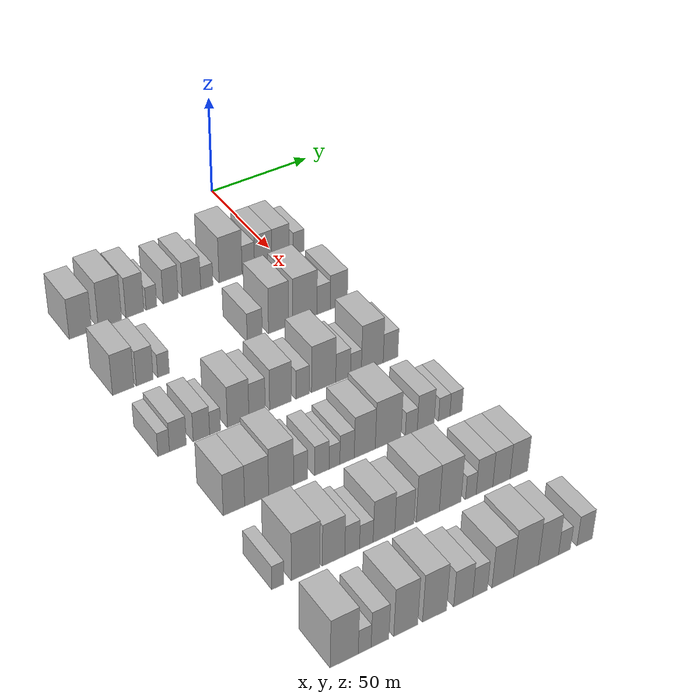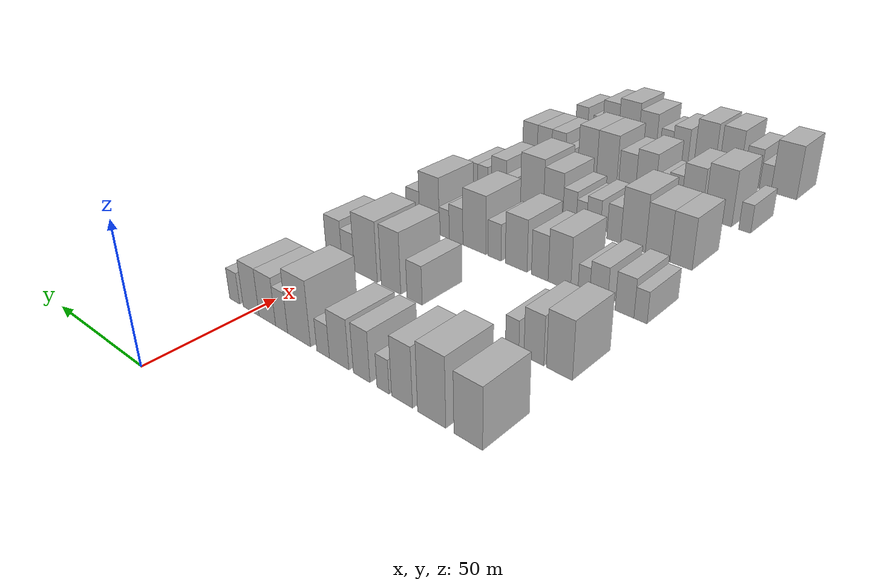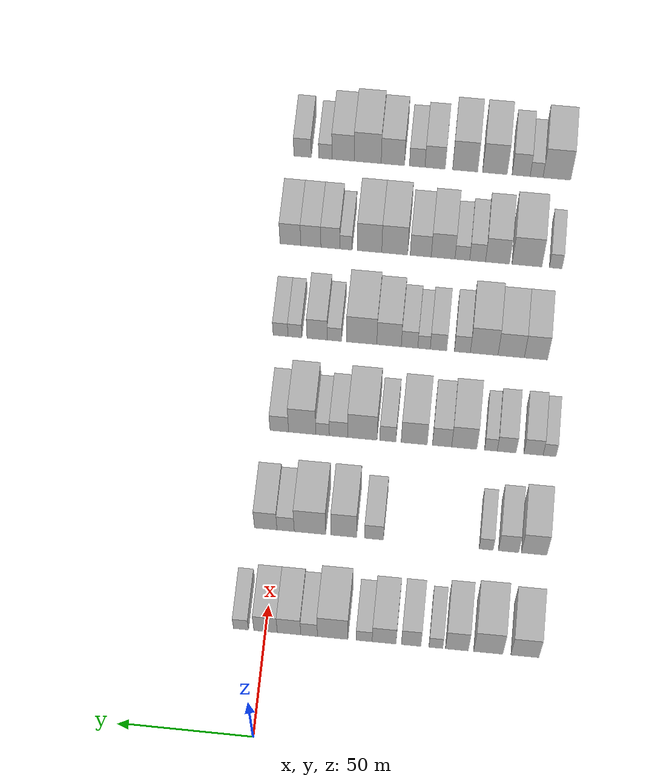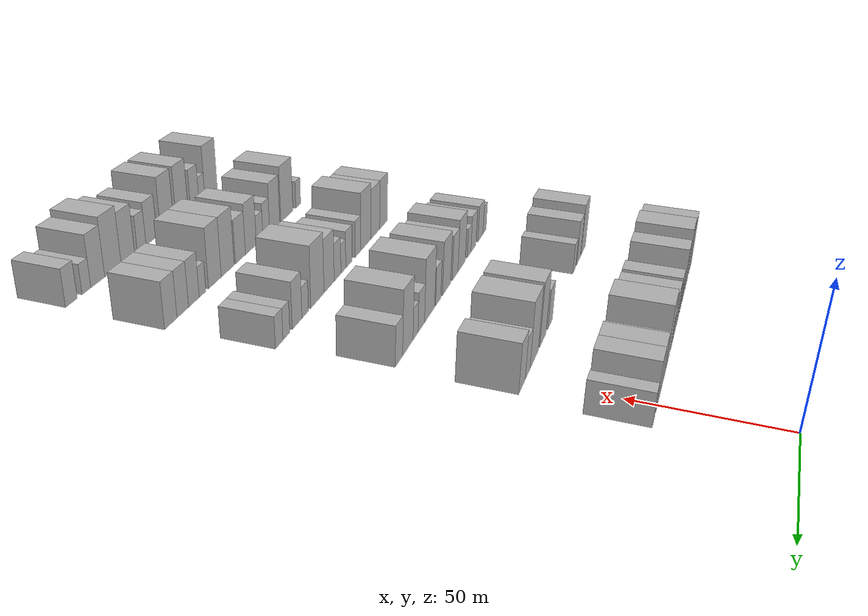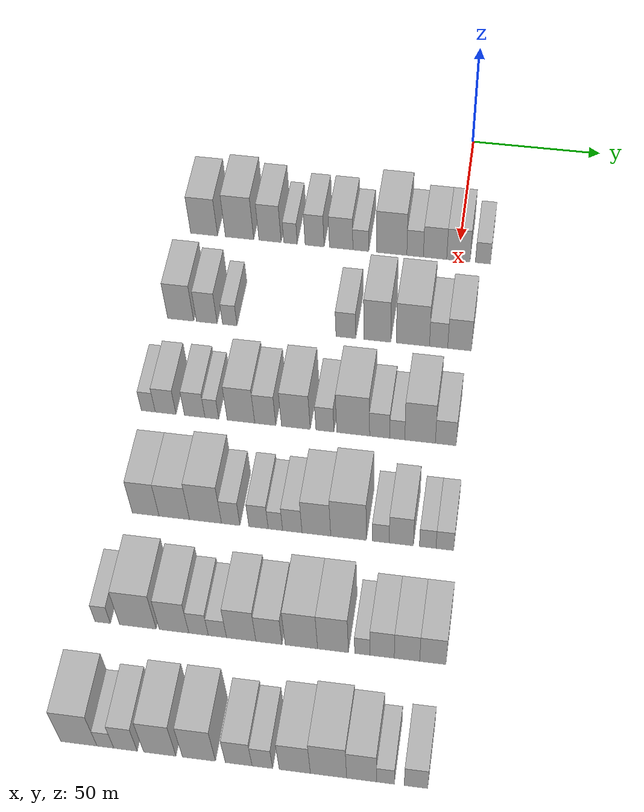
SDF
<sdf version="1.6">
 <world name="default">
  <model name="building_63">
   <static>1</static>
   <pose>50.0000 -96.2840 0 0.000000 0.000000 0.000000</pose>
   <link name="link">
    <pose>0 0 10.50 0 0 0</pose>
    <collision name="collision"><geometry><box><size>20.0000 10.3289 21.0000</size></box></geometry></collision>
    <visual name="visual">
     <cast_shadows>0</cast_shadows>
     <geometry><box><size>20.0000 10.3289 21.0000</size></box></geometry>
     <material>
      <script>
       <uri>model://HANNAS_wall/materials/scripts</uri>
       <uri>model://HANNAS_wall/materials/textures</uri>
       <name>vrc/HANNAS_wall</name>
      </script>
     </material>
    </visual>
   </link>
  </model>
  <model name="building_64">
   <static>1</static>
   <pose>50.0000 -82.7061 0 0.000000 0.000000 0.000000</pose>
   <link name="link">
    <pose>0 0 12.00 0 0 0</pose>
    <collision name="collision"><geometry><box><size>20.0000 10.8270 24.0000</size></box></geometry></collision>
    <visual name="visual">
     <cast_shadows>0</cast_shadows>
     <geometry><box><size>20.0000 10.8270 24.0000</size></box></geometry>
     <material>
      <script>
       <uri>model://HANNAS_wall/materials/scripts</uri>
       <uri>model://HANNAS_wall/materials/textures</uri>
       <name>vrc/HANNAS_wall</name>
      </script>
     </material>
    </visual>
   </link>
  </model>
  <model name="building_65">
   <static>1</static>
   <pose>50.0000 -71.0602 0 0.000000 0.000000 0.000000</pose>
   <link name="link">
    <pose>0 0 10.50 0 0 0</pose>
    <collision name="collision"><geometry><box><size>20.0000 8.4649 21.0000</size></box></geometry></collision>
    <visual name="visual">
     <cast_shadows>0</cast_shadows>
     <geometry><box><size>20.0000 8.4649 21.0000</size></box></geometry>
     <material>
      <script>
       <uri>model://HANNAS_wall/materials/scripts</uri>
       <uri>model://HANNAS_wall/materials/textures</uri>
       <name>vrc/HANNAS_wall</name>
      </script>
     </material>
    </visual>
   </link>
  </model>
  <model name="building_66">
   <static>1</static>
   <pose>50.0000 -63.2644 0 0.000000 0.000000 0.000000</pose>
   <link name="link">
    <pose>0 0 6.00 0 0 0</pose>
    <collision name="collision"><geometry><box><size>20.0000 5.1267 12.0000</size></box></geometry></collision>
    <visual name="visual">
     <cast_shadows>0</cast_shadows>
     <geometry><box><size>20.0000 5.1267 12.0000</size></box></geometry>
     <material>
      <script>
       <uri>model://HANNAS_wall/materials/scripts</uri>
       <uri>model://HANNAS_wall/materials/textures</uri>
       <name>vrc/HANNAS_wall</name>
      </script>
     </material>
    </visual>
   </link>
  </model>
  <model name="building_67">
   <static>1</static>
   <pose>50.0000 -54.0867 0 0.000000 0.000000 0.000000</pose>
   <link name="link">
    <pose>0 0 9.00 0 0 0</pose>
    <collision name="collision"><geometry><box><size>20.0000 7.2288 18.0000</size></box></geometry></collision>
    <visual name="visual">
     <cast_shadows>0</cast_shadows>
     <geometry><box><size>20.0000 7.2288 18.0000</size></box></geometry>
     <material>
      <script>
       <uri>model://HANNAS_wall/materials/scripts</uri>
       <uri>model://HANNAS_wall/materials/textures</uri>
       <name>vrc/HANNAS_wall</name>
      </script>
     </material>
    </visual>
   </link>
  </model>
  <model name="building_68">
   <static>1</static>
   <pose>50.0000 -44.0313 0 0.000000 0.000000 0.000000</pose>
   <link name="link">
    <pose>0 0 9.00 0 0 0</pose>
    <collision name="collision"><geometry><box><size>20.0000 8.8820 18.0000</size></box></geometry></collision>
    <visual name="visual">
     <cast_shadows>0</cast_shadows>
     <geometry><box><size>20.0000 8.8820 18.0000</size></box></geometry>
     <material>
      <script>
       <uri>model://HANNAS_wall/materials/scripts</uri>
       <uri>model://HANNAS_wall/materials/textures</uri>
       <name>vrc/HANNAS_wall</name>
      </script>
     </material>
    </visual>
   </link>
  </model>
  <model name="building_69">
   <static>1</static>
   <pose>50.0000 -36.5967 0 0.000000 0.000000 0.000000</pose>
   <link name="link">
    <pose>0 0 6.00 0 0 0</pose>
    <collision name="collision"><geometry><box><size>20.0000 5.9871 12.0000</size></box></geometry></collision>
    <visual name="visual">
     <cast_shadows>0</cast_shadows>
     <geometry><box><size>20.0000 5.9871 12.0000</size></box></geometry>
     <material>
      <script>
       <uri>model://HANNAS_wall/materials/scripts</uri>
       <uri>model://HANNAS_wall/materials/textures</uri>
       <name>vrc/HANNAS_wall</name>
      </script>
     </material>
    </visual>
   </link>
  </model>
  <model name="building_70">
   <static>1</static>
   <pose>50.0000 -24.9194 0 0.000000 0.000000 0.000000</pose>
   <link name="link">
    <pose>0 0 12.00 0 0 0</pose>
    <collision name="collision"><geometry><box><size>20.0000 11.3674 24.0000</size></box></geometry></collision>
    <visual name="visual">
     <cast_shadows>0</cast_shadows>
     <geometry><box><size>20.0000 11.3674 24.0000</size></box></geometry>
     <material>
      <script>
       <uri>model://HANNAS_wall/materials/scripts</uri>
       <uri>model://HANNAS_wall/materials/textures</uri>
       <name>vrc/HANNAS_wall</name>
      </script>
     </material>
    </visual>
   </link>
  </model>
  <model name="building_71">
   <static>1</static>
   <pose>50.0000 -16.1326 0 0.000000 0.000000 0.000000</pose>
   <link name="link">
    <pose>0 0 7.50 0 0 0</pose>
    <collision name="collision"><geometry><box><size>20.0000 6.2061 15.0000</size></box></geometry></collision>
    <visual name="visual">
     <cast_shadows>0</cast_shadows>
     <geometry><box><size>20.0000 6.2061 15.0000</size></box></geometry>
     <material>
      <script>
       <uri>model://HANNAS_wall/materials/scripts</uri>
       <uri>model://HANNAS_wall/materials/textures</uri>
       <name>vrc/HANNAS_wall</name>
      </script>
     </material>
    </visual>
   </link>
  </model>
  <model name="building_72">
   <static>1</static>
   <pose>50.0000 -8.6556 0 0.000000 0.000000 0.000000</pose>
   <link name="link">
    <pose>0 0 9.00 0 0 0</pose>
    <collision name="collision"><geometry><box><size>20.0000 8.7480 18.0000</size></box></geometry></collision>
    <visual name="visual">
     <cast_shadows>0</cast_shadows>
     <geometry><box><size>20.0000 8.7480 18.0000</size></box></geometry>
     <material>
      <script>
       <uri>model://HANNAS_wall/materials/scripts</uri>
       <uri>model://HANNAS_wall/materials/textures</uri>
       <name>vrc/HANNAS_wall</name>
      </script>
     </material>
    </visual>
   </link>
  </model>
  <model name="building_73">
   <static>1</static>
   <pose>50.0000 0.0947 0 0.000000 0.000000 0.000000</pose>
   <link name="link">
    <pose>0 0 9.00 0 0 0</pose>
    <collision name="collision"><geometry><box><size>20.0000 8.7524 18.0000</size></box></geometry></collision>
    <visual name="visual">
     <cast_shadows>0</cast_shadows>
     <geometry><box><size>20.0000 8.7524 18.0000</size></box></geometry>
     <material>
      <script>
       <uri>model://HANNAS_wall/materials/scripts</uri>
       <uri>model://HANNAS_wall/materials/textures</uri>
       <name>vrc/HANNAS_wall</name>
      </script>
     </material>
    </visual>
   </link>
  </model>
  <model name="building_74">
   <static>1</static>
   <pose>50.0000 9.2794 0 0.000000 0.000000 0.000000</pose>
   <link name="link">
    <pose>0 0 6.00 0 0 0</pose>
    <collision name="collision"><geometry><box><size>20.0000 5.6171 12.0000</size></box></geometry></collision>
    <visual name="visual">
     <cast_shadows>0</cast_shadows>
     <geometry><box><size>20.0000 5.6171 12.0000</size></box></geometry>
     <material>
      <script>
       <uri>model://HANNAS_wall/materials/scripts</uri>
       <uri>model://HANNAS_wall/materials/textures</uri>
       <name>vrc/HANNAS_wall</name>
      </script>
     </material>
    </visual>
   </link>
  </model>
  <model name="building_202">
   <static>1</static>
   <pose>90.0000 -97.0730 0 0.000000 0.000000 0.000000</pose>
   <link name="link">
    <pose>0 0 10.50 0 0 0</pose>
    <collision name="collision"><geometry><box><size>20.0000 9.6182 21.0000</size></box></geometry></collision>
    <visual name="visual">
     <cast_shadows>0</cast_shadows>
     <geometry><box><size>20.0000 9.6182 21.0000</size></box></geometry>
     <material>
      <script>
       <uri>model://HANNAS_wall/materials/scripts</uri>
       <uri>model://HANNAS_wall/materials/textures</uri>
       <name>vrc/HANNAS_wall</name>
      </script>
     </material>
    </visual>
   </link>
  </model>
  <model name="building_203">
   <static>1</static>
   <pose>90.0000 -87.4512 0 0.000000 0.000000 0.000000</pose>
   <link name="link">
    <pose>0 0 9.00 0 0 0</pose>
    <collision name="collision"><geometry><box><size>20.0000 7.6255 18.0000</size></box></geometry></collision>
    <visual name="visual">
     <cast_shadows>0</cast_shadows>
     <geometry><box><size>20.0000 7.6255 18.0000</size></box></geometry>
     <material>
      <script>
       <uri>model://HANNAS_wall/materials/scripts</uri>
       <uri>model://HANNAS_wall/materials/textures</uri>
       <name>vrc/HANNAS_wall</name>
      </script>
     </material>
    </visual>
   </link>
  </model>
  <model name="building_204">
   <static>1</static>
   <pose>90.0000 -78.9782 0 0.000000 0.000000 0.000000</pose>
   <link name="link">
    <pose>0 0 6.00 0 0 0</pose>
    <collision name="collision"><geometry><box><size>20.0000 5.3205 12.0000</size></box></geometry></collision>
    <visual name="visual">
     <cast_shadows>0</cast_shadows>
     <geometry><box><size>20.0000 5.3205 12.0000</size></box></geometry>
     <material>
      <script>
       <uri>model://HANNAS_wall/materials/scripts</uri>
       <uri>model://HANNAS_wall/materials/textures</uri>
       <name>vrc/HANNAS_wall</name>
      </script>
     </material>
    </visual>
   </link>
  </model>
  <model name="building_205">
   <static>1</static>
   <pose>90.0000 -36.5297 0 0.000000 0.000000 0.000000</pose>
   <link name="link">
    <pose>0 0 7.50 0 0 0</pose>
    <collision name="collision"><geometry><box><size>20.0000 7.1921 15.0000</size></box></geometry></collision>
    <visual name="visual">
     <cast_shadows>0</cast_shadows>
     <geometry><box><size>20.0000 7.1921 15.0000</size></box></geometry>
     <material>
      <script>
       <uri>model://HANNAS_wall/materials/scripts</uri>
       <uri>model://HANNAS_wall/materials/textures</uri>
       <name>vrc/HANNAS_wall</name>
      </script>
     </material>
    </visual>
   </link>
  </model>
  <model name="building_206">
   <static>1</static>
   <pose>90.0000 -25.0879 0 0.000000 0.000000 0.000000</pose>
   <link name="link">
    <pose>0 0 12.00 0 0 0</pose>
    <collision name="collision"><geometry><box><size>20.0000 9.6915 24.0000</size></box></geometry></collision>
    <visual name="visual">
     <cast_shadows>0</cast_shadows>
     <geometry><box><size>20.0000 9.6915 24.0000</size></box></geometry>
     <material>
      <script>
       <uri>model://HANNAS_wall/materials/scripts</uri>
       <uri>model://HANNAS_wall/materials/textures</uri>
       <name>vrc/HANNAS_wall</name>
      </script>
     </material>
    </visual>
   </link>
  </model>
  <model name="building_207">
   <static>1</static>
   <pose>90.0000 -12.2641 0 0.000000 0.000000 0.000000</pose>
   <link name="link">
    <pose>0 0 12.00 0 0 0</pose>
    <collision name="collision"><geometry><box><size>20.0000 11.9561 24.0000</size></box></geometry></collision>
    <visual name="visual">
     <cast_shadows>0</cast_shadows>
     <geometry><box><size>20.0000 11.9561 24.0000</size></box></geometry>
     <material>
      <script>
       <uri>model://HANNAS_wall/materials/scripts</uri>
       <uri>model://HANNAS_wall/materials/textures</uri>
       <name>vrc/HANNAS_wall</name>
      </script>
     </material>
    </visual>
   </link>
  </model>
  <model name="building_208">
   <static>1</static>
   <pose>90.0000 -3.0077 0 0.000000 0.000000 0.000000</pose>
   <link name="link">
    <pose>0 0 7.50 0 0 0</pose>
    <collision name="collision"><geometry><box><size>20.0000 6.5567 15.0000</size></box></geometry></collision>
    <visual name="visual">
     <cast_shadows>0</cast_shadows>
     <geometry><box><size>20.0000 6.5567 15.0000</size></box></geometry>
     <material>
      <script>
       <uri>model://HANNAS_wall/materials/scripts</uri>
       <uri>model://HANNAS_wall/materials/textures</uri>
       <name>vrc/HANNAS_wall</name>
      </script>
     </material>
    </visual>
   </link>
  </model>
  <model name="building_209">
   <static>1</static>
   <pose>90.0000 4.5453 0 0.000000 0.000000 0.000000</pose>
   <link name="link">
    <pose>0 0 9.00 0 0 0</pose>
    <collision name="collision"><geometry><box><size>20.0000 8.5493 18.0000</size></box></geometry></collision>
    <visual name="visual">
     <cast_shadows>0</cast_shadows>
     <geometry><box><size>20.0000 8.5493 18.0000</size></box></geometry>
     <material>
      <script>
       <uri>model://HANNAS_wall/materials/scripts</uri>
       <uri>model://HANNAS_wall/materials/textures</uri>
       <name>vrc/HANNAS_wall</name>
      </script>
     </material>
    </visual>
   </link>
  </model>
  <model name="building_337">
   <static>1</static>
   <pose>130.0000 -100.3809 0 0.000000 0.000000 0.000000</pose>
   <link name="link">
    <pose>0 0 6.00 0 0 0</pose>
    <collision name="collision"><geometry><box><size>20.0000 4.9780 12.0000</size></box></geometry></collision>
    <visual name="visual">
     <cast_shadows>0</cast_shadows>
     <geometry><box><size>20.0000 4.9780 12.0000</size></box></geometry>
     <material>
      <script>
       <uri>model://HANNAS_wall/materials/scripts</uri>
       <uri>model://HANNAS_wall/materials/textures</uri>
       <name>vrc/HANNAS_wall</name>
      </script>
     </material>
    </visual>
   </link>
  </model>
  <model name="building_338">
   <static>1</static>
   <pose>130.0000 -94.2089 0 0.000000 0.000000 0.000000</pose>
   <link name="link">
    <pose>0 0 7.50 0 0 0</pose>
    <collision name="collision"><geometry><box><size>20.0000 7.3661 15.0000</size></box></geometry></collision>
    <visual name="visual">
     <cast_shadows>0</cast_shadows>
     <geometry><box><size>20.0000 7.3661 15.0000</size></box></geometry>
     <material>
      <script>
       <uri>model://HANNAS_wall/materials/scripts</uri>
       <uri>model://HANNAS_wall/materials/textures</uri>
       <name>vrc/HANNAS_wall</name>
      </script>
     </material>
    </visual>
   </link>
  </model>
  <model name="building_339">
   <static>1</static>
   <pose>130.0000 -83.9035 0 0.000000 0.000000 0.000000</pose>
   <link name="link">
    <pose>0 0 7.50 0 0 0</pose>
    <collision name="collision"><geometry><box><size>20.0000 7.2446 15.0000</size></box></geometry></collision>
    <visual name="visual">
     <cast_shadows>0</cast_shadows>
     <geometry><box><size>20.0000 7.2446 15.0000</size></box></geometry>
     <material>
      <script>
       <uri>model://HANNAS_wall/materials/scripts</uri>
       <uri>model://HANNAS_wall/materials/textures</uri>
       <name>vrc/HANNAS_wall</name>
      </script>
     </material>
    </visual>
   </link>
  </model>
  <model name="building_340">
   <static>1</static>
   <pose>130.0000 -77.8463 0 0.000000 0.000000 0.000000</pose>
   <link name="link">
    <pose>0 0 6.00 0 0 0</pose>
    <collision name="collision"><geometry><box><size>20.0000 4.8697 12.0000</size></box></geometry></collision>
    <visual name="visual">
     <cast_shadows>0</cast_shadows>
     <geometry><box><size>20.0000 4.8697 12.0000</size></box></geometry>
     <material>
      <script>
       <uri>model://HANNAS_wall/materials/scripts</uri>
       <uri>model://HANNAS_wall/materials/textures</uri>
       <name>vrc/HANNAS_wall</name>
      </script>
     </material>
    </visual>
   </link>
  </model>
  <model name="building_341">
   <static>1</static>
   <pose>130.0000 -67.5701 0 0.000000 0.000000 0.000000</pose>
   <link name="link">
    <pose>0 0 10.50 0 0 0</pose>
    <collision name="collision"><geometry><box><size>20.0000 9.6828 21.0000</size></box></geometry></collision>
    <visual name="visual">
     <cast_shadows>0</cast_shadows>
     <geometry><box><size>20.0000 9.6828 21.0000</size></box></geometry>
     <material>
      <script>
       <uri>model://HANNAS_wall/materials/scripts</uri>
       <uri>model://HANNAS_wall/materials/textures</uri>
       <name>vrc/HANNAS_wall</name>
      </script>
     </material>
    </visual>
   </link>
  </model>
  <model name="building_342">
   <static>1</static>
   <pose>130.0000 -59.0303 0 0.000000 0.000000 0.000000</pose>
   <link name="link">
    <pose>0 0 9.00 0 0 0</pose>
    <collision name="collision"><geometry><box><size>20.0000 7.3967 18.0000</size></box></geometry></collision>
    <visual name="visual">
     <cast_shadows>0</cast_shadows>
     <geometry><box><size>20.0000 7.3967 18.0000</size></box></geometry>
     <material>
      <script>
       <uri>model://HANNAS_wall/materials/scripts</uri>
       <uri>model://HANNAS_wall/materials/textures</uri>
       <name>vrc/HANNAS_wall</name>
      </script>
     </material>
    </visual>
   </link>
  </model>
  <model name="building_343">
   <static>1</static>
   <pose>130.0000 -48.3020 0 0.000000 0.000000 0.000000</pose>
   <link name="link">
    <pose>0 0 10.50 0 0 0</pose>
    <collision name="collision"><geometry><box><size>20.0000 10.0600 21.0000</size></box></geometry></collision>
    <visual name="visual">
     <cast_shadows>0</cast_shadows>
     <geometry><box><size>20.0000 10.0600 21.0000</size></box></geometry>
     <material>
      <script>
       <uri>model://HANNAS_wall/materials/scripts</uri>
       <uri>model://HANNAS_wall/materials/textures</uri>
       <name>vrc/HANNAS_wall</name>
      </script>
     </material>
    </visual>
   </link>
  </model>
  <model name="building_344">
   <static>1</static>
   <pose>130.0000 -38.1283 0 0.000000 0.000000 0.000000</pose>
   <link name="link">
    <pose>0 0 7.50 0 0 0</pose>
    <collision name="collision"><geometry><box><size>20.0000 6.2874 15.0000</size></box></geometry></collision>
    <visual name="visual">
     <cast_shadows>0</cast_shadows>
     <geometry><box><size>20.0000 6.2874 15.0000</size></box></geometry>
     <material>
      <script>
       <uri>model://HANNAS_wall/materials/scripts</uri>
       <uri>model://HANNAS_wall/materials/textures</uri>
       <name>vrc/HANNAS_wall</name>
      </script>
     </material>
    </visual>
   </link>
  </model>
  <model name="building_345">
   <static>1</static>
   <pose>130.0000 -28.2711 0 0.000000 0.000000 0.000000</pose>
   <link name="link">
    <pose>0 0 12.00 0 0 0</pose>
    <collision name="collision"><geometry><box><size>20.0000 11.4269 24.0000</size></box></geometry></collision>
    <visual name="visual">
     <cast_shadows>0</cast_shadows>
     <geometry><box><size>20.0000 11.4269 24.0000</size></box></geometry>
     <material>
      <script>
       <uri>model://HANNAS_wall/materials/scripts</uri>
       <uri>model://HANNAS_wall/materials/textures</uri>
       <name>vrc/HANNAS_wall</name>
      </script>
     </material>
    </visual>
   </link>
  </model>
  <model name="building_346">
   <static>1</static>
   <pose>130.0000 -19.0503 0 0.000000 0.000000 0.000000</pose>
   <link name="link">
    <pose>0 0 7.50 0 0 0</pose>
    <collision name="collision"><geometry><box><size>20.0000 7.0149 15.0000</size></box></geometry></collision>
    <visual name="visual">
     <cast_shadows>0</cast_shadows>
     <geometry><box><size>20.0000 7.0149 15.0000</size></box></geometry>
     <material>
      <script>
       <uri>model://HANNAS_wall/materials/scripts</uri>
       <uri>model://HANNAS_wall/materials/textures</uri>
       <name>vrc/HANNAS_wall</name>
      </script>
     </material>
    </visual>
   </link>
  </model>
  <model name="building_347">
   <static>1</static>
   <pose>130.0000 -12.9482 0 0.000000 0.000000 0.000000</pose>
   <link name="link">
    <pose>0 0 6.00 0 0 0</pose>
    <collision name="collision"><geometry><box><size>20.0000 5.1892 12.0000</size></box></geometry></collision>
    <visual name="visual">
     <cast_shadows>0</cast_shadows>
     <geometry><box><size>20.0000 5.1892 12.0000</size></box></geometry>
     <material>
      <script>
       <uri>model://HANNAS_wall/materials/scripts</uri>
       <uri>model://HANNAS_wall/materials/textures</uri>
       <name>vrc/HANNAS_wall</name>
      </script>
     </material>
    </visual>
   </link>
  </model>
  <model name="building_348">
   <static>1</static>
   <pose>130.0000 -5.0774 0 0.000000 0.000000 0.000000</pose>
   <link name="link">
    <pose>0 0 12.00 0 0 0</pose>
    <collision name="collision"><geometry><box><size>20.0000 10.5525 24.0000</size></box></geometry></collision>
    <visual name="visual">
     <cast_shadows>0</cast_shadows>
     <geometry><box><size>20.0000 10.5525 24.0000</size></box></geometry>
     <material>
      <script>
       <uri>model://HANNAS_wall/materials/scripts</uri>
       <uri>model://HANNAS_wall/materials/textures</uri>
       <name>vrc/HANNAS_wall</name>
      </script>
     </material>
    </visual>
   </link>
  </model>
  <model name="building_349">
   <static>1</static>
   <pose>130.0000 3.7948 0 0.000000 0.000000 0.000000</pose>
   <link name="link">
    <pose>0 0 7.50 0 0 0</pose>
    <collision name="collision"><geometry><box><size>20.0000 7.1919 15.0000</size></box></geometry></collision>
    <visual name="visual">
     <cast_shadows>0</cast_shadows>
     <geometry><box><size>20.0000 7.1919 15.0000</size></box></geometry>
     <material>
      <script>
       <uri>model://HANNAS_wall/materials/scripts</uri>
       <uri>model://HANNAS_wall/materials/textures</uri>
       <name>vrc/HANNAS_wall</name>
      </script>
     </material>
    </visual>
   </link>
  </model>
  <model name="building_477">
   <static>1</static>
   <pose>170.0000 -92.5436 0 0.000000 0.000000 0.000000</pose>
   <link name="link">
    <pose>0 0 10.50 0 0 0</pose>
    <collision name="collision"><geometry><box><size>20.0000 9.0867 21.0000</size></box></geometry></collision>
    <visual name="visual">
     <cast_shadows>0</cast_shadows>
     <geometry><box><size>20.0000 9.0867 21.0000</size></box></geometry>
     <material>
      <script>
       <uri>model://HANNAS_wall/materials/scripts</uri>
       <uri>model://HANNAS_wall/materials/textures</uri>
       <name>vrc/HANNAS_wall</name>
      </script>
     </material>
    </visual>
   </link>
  </model>
  <model name="building_478">
   <static>1</static>
   <pose>170.0000 -82.8429 0 0.000000 0.000000 0.000000</pose>
   <link name="link">
    <pose>0 0 10.50 0 0 0</pose>
    <collision name="collision"><geometry><box><size>20.0000 10.3147 21.0000</size></box></geometry></collision>
    <visual name="visual">
     <cast_shadows>0</cast_shadows>
     <geometry><box><size>20.0000 10.3147 21.0000</size></box></geometry>
     <material>
      <script>
       <uri>model://HANNAS_wall/materials/scripts</uri>
       <uri>model://HANNAS_wall/materials/textures</uri>
       <name>vrc/HANNAS_wall</name>
      </script>
     </material>
    </visual>
   </link>
  </model>
  <model name="building_479">
   <static>1</static>
   <pose>170.0000 -72.2664 0 0.000000 0.000000 0.000000</pose>
   <link name="link">
    <pose>0 0 12.00 0 0 0</pose>
    <collision name="collision"><geometry><box><size>20.0000 10.8383 24.0000</size></box></geometry></collision>
    <visual name="visual">
     <cast_shadows>0</cast_shadows>
     <geometry><box><size>20.0000 10.8383 24.0000</size></box></geometry>
     <material>
      <script>
       <uri>model://HANNAS_wall/materials/scripts</uri>
       <uri>model://HANNAS_wall/materials/textures</uri>
       <name>vrc/HANNAS_wall</name>
      </script>
     </material>
    </visual>
   </link>
  </model>
  <model name="building_480">
   <static>1</static>
   <pose>170.0000 -63.7287 0 0.000000 0.000000 0.000000</pose>
   <link name="link">
    <pose>0 0 7.50 0 0 0</pose>
    <collision name="collision"><geometry><box><size>20.0000 6.2371 15.0000</size></box></geometry></collision>
    <visual name="visual">
     <cast_shadows>0</cast_shadows>
     <geometry><box><size>20.0000 6.2371 15.0000</size></box></geometry>
     <material>
      <script>
       <uri>model://HANNAS_wall/materials/scripts</uri>
       <uri>model://HANNAS_wall/materials/textures</uri>
       <name>vrc/HANNAS_wall</name>
      </script>
     </material>
    </visual>
   </link>
  </model>
  <model name="building_481">
   <static>1</static>
   <pose>170.0000 -54.3670 0 0.000000 0.000000 0.000000</pose>
   <link name="link">
    <pose>0 0 7.50 0 0 0</pose>
    <collision name="collision"><geometry><box><size>20.0000 6.4861 15.0000</size></box></geometry></collision>
    <visual name="visual">
     <cast_shadows>0</cast_shadows>
     <geometry><box><size>20.0000 6.4861 15.0000</size></box></geometry>
     <material>
      <script>
       <uri>model://HANNAS_wall/materials/scripts</uri>
       <uri>model://HANNAS_wall/materials/textures</uri>
       <name>vrc/HANNAS_wall</name>
      </script>
     </material>
    </visual>
   </link>
  </model>
  <model name="building_482">
   <static>1</static>
   <pose>170.0000 -48.6976 0 0.000000 0.000000 0.000000</pose>
   <link name="link">
    <pose>0 0 6.00 0 0 0</pose>
    <collision name="collision"><geometry><box><size>20.0000 4.8527 12.0000</size></box></geometry></collision>
    <visual name="visual">
     <cast_shadows>0</cast_shadows>
     <geometry><box><size>20.0000 4.8527 12.0000</size></box></geometry>
     <material>
      <script>
       <uri>model://HANNAS_wall/materials/scripts</uri>
       <uri>model://HANNAS_wall/materials/textures</uri>
       <name>vrc/HANNAS_wall</name>
      </script>
     </material>
    </visual>
   </link>
  </model>
  <model name="building_483">
   <static>1</static>
   <pose>170.0000 -43.0242 0 0.000000 0.000000 0.000000</pose>
   <link name="link">
    <pose>0 0 7.50 0 0 0</pose>
    <collision name="collision"><geometry><box><size>20.0000 6.4941 15.0000</size></box></geometry></collision>
    <visual name="visual">
     <cast_shadows>0</cast_shadows>
     <geometry><box><size>20.0000 6.4941 15.0000</size></box></geometry>
     <material>
      <script>
       <uri>model://HANNAS_wall/materials/scripts</uri>
       <uri>model://HANNAS_wall/materials/textures</uri>
       <name>vrc/HANNAS_wall</name>
      </script>
     </material>
    </visual>
   </link>
  </model>
  <model name="building_484">
   <static>1</static>
   <pose>170.0000 -34.9774 0 0.000000 0.000000 0.000000</pose>
   <link name="link">
    <pose>0 0 10.50 0 0 0</pose>
    <collision name="collision"><geometry><box><size>20.0000 9.5996 21.0000</size></box></geometry></collision>
    <visual name="visual">
     <cast_shadows>0</cast_shadows>
     <geometry><box><size>20.0000 9.5996 21.0000</size></box></geometry>
     <material>
      <script>
       <uri>model://HANNAS_wall/materials/scripts</uri>
       <uri>model://HANNAS_wall/materials/textures</uri>
       <name>vrc/HANNAS_wall</name>
      </script>
     </material>
    </visual>
   </link>
  </model>
  <model name="building_485">
   <static>1</static>
   <pose>170.0000 -24.2244 0 0.000000 0.000000 0.000000</pose>
   <link name="link">
    <pose>0 0 12.00 0 0 0</pose>
    <collision name="collision"><geometry><box><size>20.0000 11.9065 24.0000</size></box></geometry></collision>
    <visual name="visual">
     <cast_shadows>0</cast_shadows>
     <geometry><box><size>20.0000 11.9065 24.0000</size></box></geometry>
     <material>
      <script>
       <uri>model://HANNAS_wall/materials/scripts</uri>
       <uri>model://HANNAS_wall/materials/textures</uri>
       <name>vrc/HANNAS_wall</name>
      </script>
     </material>
    </visual>
   </link>
  </model>
  <model name="building_486">
   <static>1</static>
   <pose>170.0000 -13.4729 0 0.000000 0.000000 0.000000</pose>
   <link name="link">
    <pose>0 0 6.00 0 0 0</pose>
    <collision name="collision"><geometry><box><size>20.0000 5.5965 12.0000</size></box></geometry></collision>
    <visual name="visual">
     <cast_shadows>0</cast_shadows>
     <geometry><box><size>20.0000 5.5965 12.0000</size></box></geometry>
     <material>
      <script>
       <uri>model://HANNAS_wall/materials/scripts</uri>
       <uri>model://HANNAS_wall/materials/textures</uri>
       <name>vrc/HANNAS_wall</name>
      </script>
     </material>
    </visual>
   </link>
  </model>
  <model name="building_487">
   <static>1</static>
   <pose>170.0000 -6.6761 0 0.000000 0.000000 0.000000</pose>
   <link name="link">
    <pose>0 0 9.00 0 0 0</pose>
    <collision name="collision"><geometry><box><size>20.0000 7.9970 18.0000</size></box></geometry></collision>
    <visual name="visual">
     <cast_shadows>0</cast_shadows>
     <geometry><box><size>20.0000 7.9970 18.0000</size></box></geometry>
     <material>
      <script>
       <uri>model://HANNAS_wall/materials/scripts</uri>
       <uri>model://HANNAS_wall/materials/textures</uri>
       <name>vrc/HANNAS_wall</name>
      </script>
     </material>
    </visual>
   </link>
  </model>
  <model name="building_488">
   <static>1</static>
   <pose>170.0000 2.0554 0 0.000000 0.000000 0.000000</pose>
   <link name="link">
    <pose>0 0 6.00 0 0 0</pose>
    <collision name="collision"><geometry><box><size>20.0000 5.4661 12.0000</size></box></geometry></collision>
    <visual name="visual">
     <cast_shadows>0</cast_shadows>
     <geometry><box><size>20.0000 5.4661 12.0000</size></box></geometry>
     <material>
      <script>
       <uri>model://HANNAS_wall/materials/scripts</uri>
       <uri>model://HANNAS_wall/materials/textures</uri>
       <name>vrc/HANNAS_wall</name>
      </script>
     </material>
    </visual>
   </link>
  </model>
  <model name="building_489">
   <static>1</static>
   <pose>170.0000 7.7135 0 0.000000 0.000000 0.000000</pose>
   <link name="link">
    <pose>0 0 6.00 0 0 0</pose>
    <collision name="collision"><geometry><box><size>20.0000 5.8501 12.0000</size></box></geometry></collision>
    <visual name="visual">
     <cast_shadows>0</cast_shadows>
     <geometry><box><size>20.0000 5.8501 12.0000</size></box></geometry>
     <material>
      <script>
       <uri>model://HANNAS_wall/materials/scripts</uri>
       <uri>model://HANNAS_wall/materials/textures</uri>
       <name>vrc/HANNAS_wall</name>
      </script>
     </material>
    </visual>
   </link>
  </model>
  <model name="building_622">
   <static>1</static>
   <pose>210.0000 -97.7946 0 0.000000 0.000000 0.000000</pose>
   <link name="link">
    <pose>0 0 6.00 0 0 0</pose>
    <collision name="collision"><geometry><box><size>20.0000 5.0116 12.0000</size></box></geometry></collision>
    <visual name="visual">
     <cast_shadows>0</cast_shadows>
     <geometry><box><size>20.0000 5.0116 12.0000</size></box></geometry>
     <material>
      <script>
       <uri>model://HANNAS_wall/materials/scripts</uri>
       <uri>model://HANNAS_wall/materials/textures</uri>
       <name>vrc/HANNAS_wall</name>
      </script>
     </material>
    </visual>
   </link>
  </model>
  <model name="building_623">
   <static>1</static>
   <pose>210.0000 -86.3336 0 0.000000 0.000000 0.000000</pose>
   <link name="link">
    <pose>0 0 12.00 0 0 0</pose>
    <collision name="collision"><geometry><box><size>20.0000 11.9104 24.0000</size></box></geometry></collision>
    <visual name="visual">
     <cast_shadows>0</cast_shadows>
     <geometry><box><size>20.0000 11.9104 24.0000</size></box></geometry>
     <material>
      <script>
       <uri>model://HANNAS_wall/materials/scripts</uri>
       <uri>model://HANNAS_wall/materials/textures</uri>
       <name>vrc/HANNAS_wall</name>
      </script>
     </material>
    </visual>
   </link>
  </model>
  <model name="building_624">
   <static>1</static>
   <pose>210.0000 -74.5983 0 0.000000 0.000000 0.000000</pose>
   <link name="link">
    <pose>0 0 10.50 0 0 0</pose>
    <collision name="collision"><geometry><box><size>20.0000 9.5602 21.0000</size></box></geometry></collision>
    <visual name="visual">
     <cast_shadows>0</cast_shadows>
     <geometry><box><size>20.0000 9.5602 21.0000</size></box></geometry>
     <material>
      <script>
       <uri>model://HANNAS_wall/materials/scripts</uri>
       <uri>model://HANNAS_wall/materials/textures</uri>
       <name>vrc/HANNAS_wall</name>
      </script>
     </material>
    </visual>
   </link>
  </model>
  <model name="building_625">
   <static>1</static>
   <pose>210.0000 -66.6676 0 0.000000 0.000000 0.000000</pose>
   <link name="link">
    <pose>0 0 7.50 0 0 0</pose>
    <collision name="collision"><geometry><box><size>20.0000 6.3012 15.0000</size></box></geometry></collision>
    <visual name="visual">
     <cast_shadows>0</cast_shadows>
     <geometry><box><size>20.0000 6.3012 15.0000</size></box></geometry>
     <material>
      <script>
       <uri>model://HANNAS_wall/materials/scripts</uri>
       <uri>model://HANNAS_wall/materials/textures</uri>
       <name>vrc/HANNAS_wall</name>
      </script>
     </material>
    </visual>
   </link>
  </model>
  <model name="building_626">
   <static>1</static>
   <pose>210.0000 -60.5862 0 0.000000 0.000000 0.000000</pose>
   <link name="link">
    <pose>0 0 6.00 0 0 0</pose>
    <collision name="collision"><geometry><box><size>20.0000 5.8616 12.0000</size></box></geometry></collision>
    <visual name="visual">
     <cast_shadows>0</cast_shadows>
     <geometry><box><size>20.0000 5.8616 12.0000</size></box></geometry>
     <material>
      <script>
       <uri>model://HANNAS_wall/materials/scripts</uri>
       <uri>model://HANNAS_wall/materials/textures</uri>
       <name>vrc/HANNAS_wall</name>
      </script>
     </material>
    </visual>
   </link>
  </model>
  <model name="building_627">
   <static>1</static>
   <pose>210.0000 -52.9222 0 0.000000 0.000000 0.000000</pose>
   <link name="link">
    <pose>0 0 10.50 0 0 0</pose>
    <collision name="collision"><geometry><box><size>20.0000 9.4664 21.0000</size></box></geometry></collision>
    <visual name="visual">
     <cast_shadows>0</cast_shadows>
     <geometry><box><size>20.0000 9.4664 21.0000</size></box></geometry>
     <material>
      <script>
       <uri>model://HANNAS_wall/materials/scripts</uri>
       <uri>model://HANNAS_wall/materials/textures</uri>
       <name>vrc/HANNAS_wall</name>
      </script>
     </material>
    </visual>
   </link>
  </model>
  <model name="building_628">
   <static>1</static>
   <pose>210.0000 -43.9848 0 0.000000 0.000000 0.000000</pose>
   <link name="link">
    <pose>0 0 9.00 0 0 0</pose>
    <collision name="collision"><geometry><box><size>20.0000 8.4084 18.0000</size></box></geometry></collision>
    <visual name="visual">
     <cast_shadows>0</cast_shadows>
     <geometry><box><size>20.0000 8.4084 18.0000</size></box></geometry>
     <material>
      <script>
       <uri>model://HANNAS_wall/materials/scripts</uri>
       <uri>model://HANNAS_wall/materials/textures</uri>
       <name>vrc/HANNAS_wall</name>
      </script>
     </material>
    </visual>
   </link>
  </model>
  <model name="building_629">
   <static>1</static>
   <pose>210.0000 -33.6000 0 0.000000 0.000000 0.000000</pose>
   <link name="link">
    <pose>0 0 12.00 0 0 0</pose>
    <collision name="collision"><geometry><box><size>20.0000 10.3612 24.0000</size></box></geometry></collision>
    <visual name="visual">
     <cast_shadows>0</cast_shadows>
     <geometry><box><size>20.0000 10.3612 24.0000</size></box></geometry>
     <material>
      <script>
       <uri>model://HANNAS_wall/materials/scripts</uri>
       <uri>model://HANNAS_wall/materials/textures</uri>
       <name>vrc/HANNAS_wall</name>
      </script>
     </material>
    </visual>
   </link>
  </model>
  <model name="building_630">
   <static>1</static>
   <pose>210.0000 -23.5041 0 0.000000 0.000000 0.000000</pose>
   <link name="link">
    <pose>0 0 12.00 0 0 0</pose>
    <collision name="collision"><geometry><box><size>20.0000 9.8306 24.0000</size></box></geometry></collision>
    <visual name="visual">
     <cast_shadows>0</cast_shadows>
     <geometry><box><size>20.0000 9.8306 24.0000</size></box></geometry>
     <material>
      <script>
       <uri>model://HANNAS_wall/materials/scripts</uri>
       <uri>model://HANNAS_wall/materials/textures</uri>
       <name>vrc/HANNAS_wall</name>
      </script>
     </material>
    </visual>
   </link>
  </model>
  <model name="building_631">
   <static>1</static>
   <pose>210.0000 -14.1484 0 0.000000 0.000000 0.000000</pose>
   <link name="link">
    <pose>0 0 6.00 0 0 0</pose>
    <collision name="collision"><geometry><box><size>20.0000 4.8808 12.0000</size></box></geometry></collision>
    <visual name="visual">
     <cast_shadows>0</cast_shadows>
     <geometry><box><size>20.0000 4.8808 12.0000</size></box></geometry>
     <material>
      <script>
       <uri>model://HANNAS_wall/materials/scripts</uri>
       <uri>model://HANNAS_wall/materials/textures</uri>
       <name>vrc/HANNAS_wall</name>
      </script>
     </material>
    </visual>
   </link>
  </model>
  <model name="building_632">
   <static>1</static>
   <pose>210.0000 -7.8735 0 0.000000 0.000000 0.000000</pose>
   <link name="link">
    <pose>0 0 9.00 0 0 0</pose>
    <collision name="collision"><geometry><box><size>20.0000 7.6689 18.0000</size></box></geometry></collision>
    <visual name="visual">
     <cast_shadows>0</cast_shadows>
     <geometry><box><size>20.0000 7.6689 18.0000</size></box></geometry>
     <material>
      <script>
       <uri>model://HANNAS_wall/materials/scripts</uri>
       <uri>model://HANNAS_wall/materials/textures</uri>
       <name>vrc/HANNAS_wall</name>
      </script>
     </material>
    </visual>
   </link>
  </model>
  <model name="building_633">
   <static>1</static>
   <pose>210.0000 -0.0198 0 0.000000 0.000000 0.000000</pose>
   <link name="link">
    <pose>0 0 9.00 0 0 0</pose>
    <collision name="collision"><geometry><box><size>20.0000 8.0384 18.0000</size></box></geometry></collision>
    <visual name="visual">
     <cast_shadows>0</cast_shadows>
     <geometry><box><size>20.0000 8.0384 18.0000</size></box></geometry>
     <material>
      <script>
       <uri>model://HANNAS_wall/materials/scripts</uri>
       <uri>model://HANNAS_wall/materials/textures</uri>
       <name>vrc/HANNAS_wall</name>
      </script>
     </material>
    </visual>
   </link>
  </model>
  <model name="building_634">
   <static>1</static>
   <pose>210.0000 8.1590 0 0.000000 0.000000 0.000000</pose>
   <link name="link">
    <pose>0 0 9.00 0 0 0</pose>
    <collision name="collision"><geometry><box><size>20.0000 8.3193 18.0000</size></box></geometry></collision>
    <visual name="visual">
     <cast_shadows>0</cast_shadows>
     <geometry><box><size>20.0000 8.3193 18.0000</size></box></geometry>
     <material>
      <script>
       <uri>model://HANNAS_wall/materials/scripts</uri>
       <uri>model://HANNAS_wall/materials/textures</uri>
       <name>vrc/HANNAS_wall</name>
      </script>
     </material>
    </visual>
   </link>
  </model>
  <model name="building_764">
   <static>1</static>
   <pose>250.0000 -95.7969 0 0.000000 0.000000 0.000000</pose>
   <link name="link">
    <pose>0 0 12.00 0 0 0</pose>
    <collision name="collision"><geometry><box><size>20.0000 11.2571 24.0000</size></box></geometry></collision>
    <visual name="visual">
     <cast_shadows>0</cast_shadows>
     <geometry><box><size>20.0000 11.2571 24.0000</size></box></geometry>
     <material>
      <script>
       <uri>model://HANNAS_wall/materials/scripts</uri>
       <uri>model://HANNAS_wall/materials/textures</uri>
       <name>vrc/HANNAS_wall</name>
      </script>
     </material>
    </visual>
   </link>
  </model>
  <model name="building_765">
   <static>1</static>
   <pose>250.0000 -87.5582 0 0.000000 0.000000 0.000000</pose>
   <link name="link">
    <pose>0 0 6.00 0 0 0</pose>
    <collision name="collision"><geometry><box><size>20.0000 5.2202 12.0000</size></box></geometry></collision>
    <visual name="visual">
     <cast_shadows>0</cast_shadows>
     <geometry><box><size>20.0000 5.2202 12.0000</size></box></geometry>
     <material>
      <script>
       <uri>model://HANNAS_wall/materials/scripts</uri>
       <uri>model://HANNAS_wall/materials/textures</uri>
       <name>vrc/HANNAS_wall</name>
      </script>
     </material>
    </visual>
   </link>
  </model>
  <model name="building_766">
   <static>1</static>
   <pose>250.0000 -81.3086 0 0.000000 0.000000 0.000000</pose>
   <link name="link">
    <pose>0 0 9.00 0 0 0</pose>
    <collision name="collision"><geometry><box><size>20.0000 7.2791 18.0000</size></box></geometry></collision>
    <visual name="visual">
     <cast_shadows>0</cast_shadows>
     <geometry><box><size>20.0000 7.2791 18.0000</size></box></geometry>
     <material>
      <script>
       <uri>model://HANNAS_wall/materials/scripts</uri>
       <uri>model://HANNAS_wall/materials/textures</uri>
       <name>vrc/HANNAS_wall</name>
      </script>
     </material>
    </visual>
   </link>
  </model>
  <model name="building_767">
   <static>1</static>
   <pose>250.0000 -70.6826 0 0.000000 0.000000 0.000000</pose>
   <link name="link">
    <pose>0 0 12.00 0 0 0</pose>
    <collision name="collision"><geometry><box><size>20.0000 9.9728 24.0000</size></box></geometry></collision>
    <visual name="visual">
     <cast_shadows>0</cast_shadows>
     <geometry><box><size>20.0000 9.9728 24.0000</size></box></geometry>
     <material>
      <script>
       <uri>model://HANNAS_wall/materials/scripts</uri>
       <uri>model://HANNAS_wall/materials/textures</uri>
       <name>vrc/HANNAS_wall</name>
      </script>
     </material>
    </visual>
   </link>
  </model>
  <model name="building_768">
   <static>1</static>
   <pose>250.0000 -58.6125 0 0.000000 0.000000 0.000000</pose>
   <link name="link">
    <pose>0 0 12.00 0 0 0</pose>
    <collision name="collision"><geometry><box><size>20.0000 10.1675 24.0000</size></box></geometry></collision>
    <visual name="visual">
     <cast_shadows>0</cast_shadows>
     <geometry><box><size>20.0000 10.1675 24.0000</size></box></geometry>
     <material>
      <script>
       <uri>model://HANNAS_wall/materials/scripts</uri>
       <uri>model://HANNAS_wall/materials/textures</uri>
       <name>vrc/HANNAS_wall</name>
      </script>
     </material>
    </visual>
   </link>
  </model>
  <model name="building_769">
   <static>1</static>
   <pose>250.0000 -46.4121 0 0.000000 0.000000 0.000000</pose>
   <link name="link">
    <pose>0 0 9.00 0 0 0</pose>
    <collision name="collision"><geometry><box><size>20.0000 8.2333 18.0000</size></box></geometry></collision>
    <visual name="visual">
     <cast_shadows>0</cast_shadows>
     <geometry><box><size>20.0000 8.2333 18.0000</size></box></geometry>
     <material>
      <script>
       <uri>model://HANNAS_wall/materials/scripts</uri>
       <uri>model://HANNAS_wall/materials/textures</uri>
       <name>vrc/HANNAS_wall</name>
      </script>
     </material>
    </visual>
   </link>
  </model>
  <model name="building_770">
   <static>1</static>
   <pose>250.0000 -39.1382 0 0.000000 0.000000 0.000000</pose>
   <link name="link">
    <pose>0 0 7.50 0 0 0</pose>
    <collision name="collision"><geometry><box><size>20.0000 6.3147 15.0000</size></box></geometry></collision>
    <visual name="visual">
     <cast_shadows>0</cast_shadows>
     <geometry><box><size>20.0000 6.3147 15.0000</size></box></geometry>
     <material>
      <script>
       <uri>model://HANNAS_wall/materials/scripts</uri>
       <uri>model://HANNAS_wall/materials/textures</uri>
       <name>vrc/HANNAS_wall</name>
      </script>
     </material>
    </visual>
   </link>
  </model>
  <model name="building_771">
   <static>1</static>
   <pose>250.0000 -29.2352 0 0.000000 0.000000 0.000000</pose>
   <link name="link">
    <pose>0 0 10.50 0 0 0</pose>
    <collision name="collision"><geometry><box><size>20.0000 9.4912 21.0000</size></box></geometry></collision>
    <visual name="visual">
     <cast_shadows>0</cast_shadows>
     <geometry><box><size>20.0000 9.4912 21.0000</size></box></geometry>
     <material>
      <script>
       <uri>model://HANNAS_wall/materials/scripts</uri>
       <uri>model://HANNAS_wall/materials/textures</uri>
       <name>vrc/HANNAS_wall</name>
      </script>
     </material>
    </visual>
   </link>
  </model>
  <model name="building_772">
   <static>1</static>
   <pose>250.0000 -18.9783 0 0.000000 0.000000 0.000000</pose>
   <link name="link">
    <pose>0 0 12.00 0 0 0</pose>
    <collision name="collision"><geometry><box><size>20.0000 11.0226 24.0000</size></box></geometry></collision>
    <visual name="visual">
     <cast_shadows>0</cast_shadows>
     <geometry><box><size>20.0000 11.0226 24.0000</size></box></geometry>
     <material>
      <script>
       <uri>model://HANNAS_wall/materials/scripts</uri>
       <uri>model://HANNAS_wall/materials/textures</uri>
       <name>vrc/HANNAS_wall</name>
      </script>
     </material>
    </visual>
   </link>
  </model>
  <model name="building_773">
   <static>1</static>
   <pose>250.0000 -8.9559 0 0.000000 0.000000 0.000000</pose>
   <link name="link">
    <pose>0 0 10.50 0 0 0</pose>
    <collision name="collision"><geometry><box><size>20.0000 9.0223 21.0000</size></box></geometry></collision>
    <visual name="visual">
     <cast_shadows>0</cast_shadows>
     <geometry><box><size>20.0000 9.0223 21.0000</size></box></geometry>
     <material>
      <script>
       <uri>model://HANNAS_wall/materials/scripts</uri>
       <uri>model://HANNAS_wall/materials/textures</uri>
       <name>vrc/HANNAS_wall</name>
      </script>
     </material>
    </visual>
   </link>
  </model>
  <model name="building_774">
   <static>1</static>
   <pose>250.0000 -1.7334 0 0.000000 0.000000 0.000000</pose>
   <link name="link">
    <pose>0 0 6.00 0 0 0</pose>
    <collision name="collision"><geometry><box><size>20.0000 5.4228 12.0000</size></box></geometry></collision>
    <visual name="visual">
     <cast_shadows>0</cast_shadows>
     <geometry><box><size>20.0000 5.4228 12.0000</size></box></geometry>
     <material>
      <script>
       <uri>model://HANNAS_wall/materials/scripts</uri>
       <uri>model://HANNAS_wall/materials/textures</uri>
       <name>vrc/HANNAS_wall</name>
      </script>
     </material>
    </visual>
   </link>
  </model>
  <model name="building_775">
   <static>1</static>
   <pose>250.0000 7.5194 0 0.000000 0.000000 0.000000</pose>
   <link name="link">
    <pose>0 0 7.50 0 0 0</pose>
    <collision name="collision"><geometry><box><size>20.0000 7.0828 15.0000</size></box></geometry></collision>
    <visual name="visual">
     <cast_shadows>0</cast_shadows>
     <geometry><box><size>20.0000 7.0828 15.0000</size></box></geometry>
     <material>
      <script>
       <uri>model://HANNAS_wall/materials/scripts</uri>
       <uri>model://HANNAS_wall/materials/textures</uri>
       <name>vrc/HANNAS_wall</name>
      </script>
     </material>
    </visual>
   </link>
  </model>
 </world>
</sdf>
